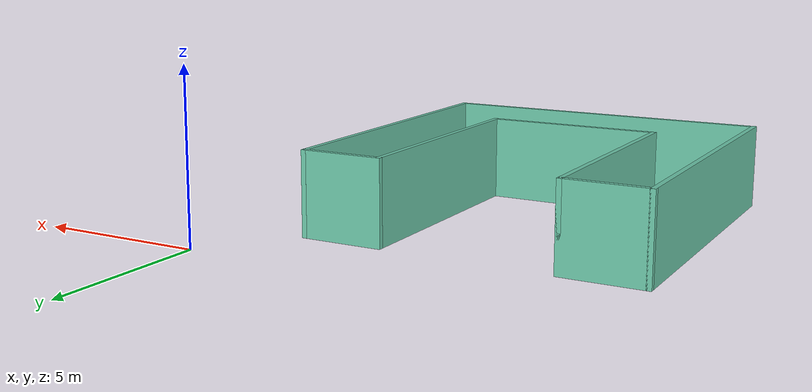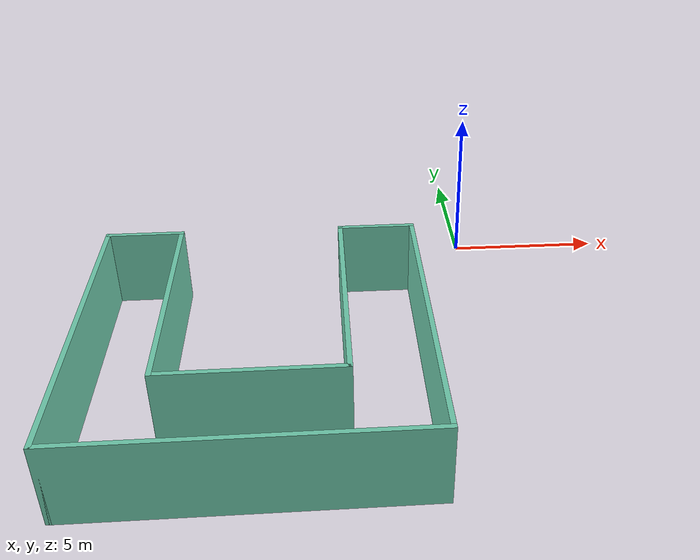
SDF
<?xml version='1.0'?>
<sdf version='1.7'>
  <model name='building'>
    <pose>-5.95757 -6.24982 0 0 -0 0</pose>
    <link name='Wall_81'>
      <collision name='Wall_81_Collision'>
        <geometry>
          <box>
            <size>10 0.15 2.5</size>
          </box>
        </geometry>
        <pose>0 0 1.25 0 -0 0</pose>
      </collision>
      <visual name='Wall_81_Visual'>
        <pose>0 0 1.25 0 -0 0</pose>
        <geometry>
          <box>
            <size>10 0.15 2.5</size>
          </box>
        </geometry>
        <material>
          <script>
            <uri>file://media/materials/scripts/gazebo.material</uri>
            <name>Gazebo/Grey</name>
          </script>
          <ambient>0.435294 0.796078 0.67451 1</ambient>
        </material>
        <meta>
          <layer>0</layer>
        </meta>
      </visual>
      <pose>-5.88257 -1.24982 0 0 -0 -1.5708</pose>
    </link>
    <link name='Wall_82'>
      <collision name='Wall_82_Collision'>
        <geometry>
          <box>
            <size>10 0.15 2.5</size>
          </box>
        </geometry>
        <pose>0 0 1.25 0 -0 0</pose>
      </collision>
      <visual name='Wall_82_Visual'>
        <pose>0 0 1.25 0 -0 0</pose>
        <geometry>
          <box>
            <size>10 0.15 2.5</size>
          </box>
        </geometry>
        <material>
          <script>
            <uri>file://media/materials/scripts/gazebo.material</uri>
            <name>Gazebo/Grey</name>
          </script>
          <ambient>0.435294 0.796078 0.67451 1</ambient>
        </material>
        <meta>
          <layer>0</layer>
        </meta>
      </visual>
      <pose>-0.957571 -6.17482 0 0 -0 0</pose>
    </link>
    <link name='Wall_85'>
      <collision name='Wall_85_Collision'>
        <geometry>
          <box>
            <size>10 0.15 2.5</size>
          </box>
        </geometry>
        <pose>0 0 1.25 0 -0 0</pose>
      </collision>
      <visual name='Wall_85_Visual'>
        <pose>0 0 1.25 0 -0 0</pose>
        <geometry>
          <box>
            <size>10 0.15 2.5</size>
          </box>
        </geometry>
        <material>
          <script>
            <uri>file://media/materials/scripts/gazebo.material</uri>
            <name>Gazebo/Grey</name>
          </script>
          <ambient>0.435294 0.796078 0.67451 1</ambient>
        </material>
        <meta>
          <layer>0</layer>
        </meta>
      </visual>
      <pose>3.96743 -1.24982 0 0 -0 1.5708</pose>
    </link>
    <link name='Wall_87'>
      <collision name='Wall_87_Collision'>
        <geometry>
          <box>
            <size>2.5 0.15 2.5</size>
          </box>
        </geometry>
        <pose>0 0 1.25 0 -0 0</pose>
      </collision>
      <visual name='Wall_87_Visual'>
        <pose>0 0 1.25 0 -0 0</pose>
        <geometry>
          <box>
            <size>2.5 0.15 2.5</size>
          </box>
        </geometry>
        <material>
          <script>
            <uri>file://media/materials/scripts/gazebo.material</uri>
            <name>Gazebo/Grey</name>
          </script>
          <ambient>0.435294 0.796078 0.67451 1</ambient>
        </material>
        <meta>
          <layer>0</layer>
        </meta>
      </visual>
      <pose>-4.70757 3.67518 0 0 -0 0</pose>
    </link>
    <link name='Wall_89'>
      <collision name='Wall_89_Collision'>
        <geometry>
          <box>
            <size>2.5 0.15 2.5</size>
          </box>
        </geometry>
        <pose>0 0 1.25 0 -0 0</pose>
      </collision>
      <visual name='Wall_89_Visual'>
        <pose>0 0 1.25 0 -0 0</pose>
        <geometry>
          <box>
            <size>2.5 0.15 2.5</size>
          </box>
        </geometry>
        <material>
          <script>
            <uri>file://media/materials/scripts/gazebo.material</uri>
            <name>Gazebo/Grey</name>
          </script>
          <ambient>0.435294 0.796078 0.67451 1</ambient>
        </material>
        <meta>
          <layer>0</layer>
        </meta>
      </visual>
      <pose>2.79243 3.67518 0 0 -0 3.14159</pose>
    </link>
    <link name='Wall_91'>
      <collision name='Wall_91_Collision'>
        <geometry>
          <box>
            <size>7.5 0.15 2.5</size>
          </box>
        </geometry>
        <pose>0 0 1.25 0 -0 0</pose>
      </collision>
      <visual name='Wall_91_Visual'>
        <pose>0 0 1.25 0 -0 0</pose>
        <geometry>
          <box>
            <size>7.5 0.15 2.5</size>
          </box>
        </geometry>
        <material>
          <script>
            <uri>file://media/materials/scripts/gazebo.material</uri>
            <name>Gazebo/Grey</name>
          </script>
          <ambient>0.435294 0.796078 0.67451 1</ambient>
        </material>
        <meta>
          <layer>0</layer>
        </meta>
      </visual>
      <pose>-3.53257 0.000181 0 0 -0 -1.5708</pose>
    </link>
    <link name='Wall_93'>
      <collision name='Wall_93_Collision'>
        <geometry>
          <box>
            <size>7.5 0.15 2.5</size>
          </box>
        </geometry>
        <pose>0 0 1.25 0 -0 0</pose>
      </collision>
      <visual name='Wall_93_Visual'>
        <pose>0 0 1.25 0 -0 0</pose>
        <geometry>
          <box>
            <size>7.5 0.15 2.5</size>
          </box>
        </geometry>
        <material>
          <script>
            <uri>file://media/materials/scripts/gazebo.material</uri>
            <name>Gazebo/Grey</name>
          </script>
          <ambient>0.435294 0.796078 0.67451 1</ambient>
        </material>
        <meta>
          <layer>0</layer>
        </meta>
      </visual>
      <pose>1.61743 0.000181 0 0 -0 -1.5708</pose>
    </link>
    <link name='Wall_95'>
      <collision name='Wall_95_Collision'>
        <geometry>
          <box>
            <size>5.3 0.15 2.5</size>
          </box>
        </geometry>
        <pose>0 0 1.25 0 -0 0</pose>
      </collision>
      <visual name='Wall_95_Visual'>
        <pose>0 0 1.25 0 -0 0</pose>
        <geometry>
          <box>
            <size>5.3 0.15 2.5</size>
          </box>
        </geometry>
        <material>
          <script>
            <uri>file://media/materials/scripts/gazebo.material</uri>
            <name>Gazebo/Grey</name>
          </script>
          <ambient>0.435294 0.796078 0.67451 1</ambient>
        </material>
        <meta>
          <layer>0</layer>
        </meta>
      </visual>
      <pose>-0.957571 -3.67482 0 0 -0 0</pose>
    </link>
    <static>1</static>
  </model>
</sdf>
